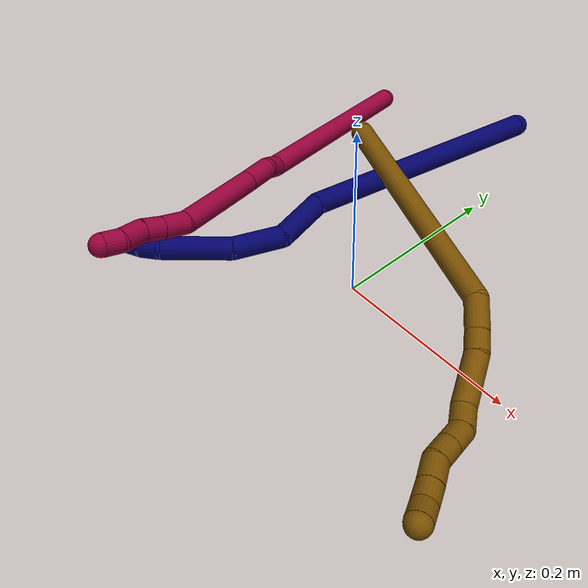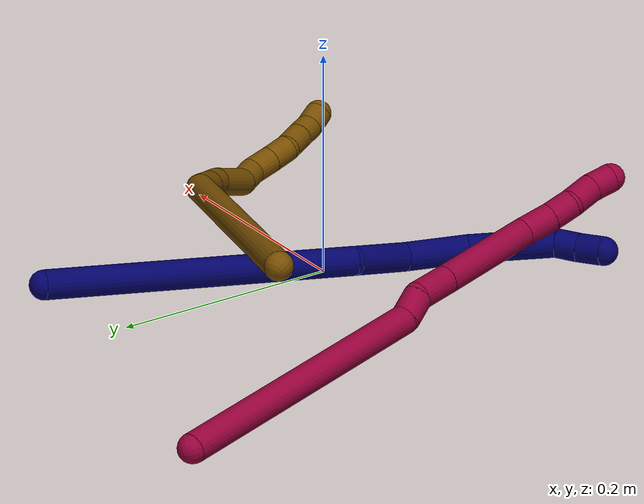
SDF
<sdf version="1.7">
 <world name="default">
  <model name="photoneo_s_sensor">
   <static>1</static>
   <pose>0 0 2 1.57079 1.57079 3.14159</pose>
   <link name="link">
    <inertial><mass>0.1</mass></inertial>
    <sensor name="sensor" type="depth">
     <update_rate>30</update_rate>
     <camera>
      <horizontal_fov>1.22</horizontal_fov>
      <image><width>1920</width><height>1200</height><format>B8G8R8</format></image>
      <clip><near>0.1</near><far>4</far></clip>
      <depth_camera><output>points</output></depth_camera>
     </camera>
     <plugin name="camera_plugin" filename="libgazebo_ros_depth_camera.so">
      <baseline>0.2</baseline>
      <alwaysOn>1</alwaysOn>
      <updateRate>0.0</updateRate>
      <cameraName>camera_ir</cameraName>
      <imageTopicName>/camera/color/image_raw</imageTopicName>
      <cameraInfoTopicName>/camera/color/camera_info</cameraInfoTopicName>
      <depthImageTopicName>/camera/depth/image_raw</depthImageTopicName>
      <depthImageCameraInfoTopicName>/camera/depth/camera_info</depthImageCameraInfoTopicName>
      <pointCloudTopicName>/camera/depth/points</pointCloudTopicName>
      <frameName>fr_optical</frameName>
      <pointCloudCutoff>0.1</pointCloudCutoff>
      <pointCloudCutoffMax>2.0</pointCloudCutoffMax>
      <distortionK1>0</distortionK1>
      <distortionK2>0</distortionK2>
      <distortionK3>0</distortionK3>
      <distortionT1>0</distortionT1>
      <distortionT2>0</distortionT2>
      <CxPrime>0</CxPrime>
      <Cx>0</Cx>
      <Cy>0</Cy>
      <focalLength>0</focalLength>
      <hackBaseline>0</hackBaseline>
     </plugin>
    </sensor>
   </link>
  </model>
  <model name="7">
   <static>0</static>
   <link name="7">
    <collision name="collision-cylinder-e_1_1_4">
     <pose>-0.027918 -0.087178 -0.098935 2.41928 -0.208638 -0.540796</pose>
     <geometry><cylinder><radius>0.0125</radius><length>0.269575</length></cylinder></geometry>
     <surface>
      <friction><ode><mu>1.16</mu><mu2>1.16</mu2><slip1>0</slip1><slip2>0</slip2></ode></friction>
      <contact><ode><kp>1e+06</kp><kd>1</kd><max_vel>0</max_vel><min_depth>0.001</min_depth></ode></contact>
     </surface>
    </collision>
    <visual name="visual-cylinder-e_1_1_4">
     <pose>-0.027918 -0.087178 -0.098935 2.41928 -0.208638 -0.540796</pose>
     <geometry><cylinder><radius>0.0125</radius><length>0.269575</length></cylinder></geometry>
     <material><ambient>0.003922 0 0.403922 1</ambient></material>
    </visual>
    <collision name="collision-cylinder-e_2_4_5">
     <pose>-0.054301 -0.197708 -0.213213 2.15207 0.054916 0.101723</pose>
     <geometry><cylinder><radius>0.0125</radius><length>0.055965</length></cylinder></geometry>
     <surface>
      <friction><ode><mu>1.16</mu><mu2>1.16</mu2><slip1>0</slip1><slip2>0</slip2></ode></friction>
      <contact><ode><kp>1e+06</kp><kd>1</kd><max_vel>0</max_vel><min_depth>0.001</min_depth></ode></contact>
     </surface>
    </collision>
    <visual name="visual-cylinder-e_2_4_5">
     <pose>-0.054301 -0.197708 -0.213213 2.15207 0.054916 0.101723</pose>
     <geometry><cylinder><radius>0.0125</radius><length>0.055965</length></cylinder></geometry>
     <material><ambient>0.003922 0 0.403922 1</ambient></material>
    </visual>
    <collision name="collision-cylinder-e_3_5_6">
     <pose>-0.061972 -0.237264 -0.249589 2.48516 -0.333772 -0.91876</pose>
     <geometry><cylinder><radius>0.0125</radius><length>0.056207</length></cylinder></geometry>
     <surface>
      <friction><ode><mu>1.16</mu><mu2>1.16</mu2><slip1>0</slip1><slip2>0</slip2></ode></friction>
      <contact><ode><kp>1e+06</kp><kd>1</kd><max_vel>0</max_vel><min_depth>0.001</min_depth></ode></contact>
     </surface>
    </collision>
    <visual name="visual-cylinder-e_3_5_6">
     <pose>-0.061972 -0.237264 -0.249589 2.48516 -0.333772 -0.91876</pose>
     <geometry><cylinder><radius>0.0125</radius><length>0.056207</length></cylinder></geometry>
     <material><ambient>0.003922 0 0.403922 1</ambient></material>
    </visual>
    <collision name="collision-cylinder-e_4_6_7">
     <pose>-0.088475 -0.265572 -0.301431 2.76728 -0.481534 -1.82762</pose>
     <geometry><cylinder><radius>0.0125</radius><length>0.074693</length></cylinder></geometry>
     <surface>
      <friction><ode><mu>1.16</mu><mu2>1.16</mu2><slip1>0</slip1><slip2>0</slip2></ode></friction>
      <contact><ode><kp>1e+06</kp><kd>1</kd><max_vel>0</max_vel><min_depth>0.001</min_depth></ode></contact>
     </surface>
    </collision>
    <visual name="visual-cylinder-e_4_6_7">
     <pose>-0.088475 -0.265572 -0.301431 2.76728 -0.481534 -1.82762</pose>
     <geometry><cylinder><radius>0.0125</radius><length>0.074693</length></cylinder></geometry>
     <material><ambient>0.003922 0 0.403922 1</ambient></material>
    </visual>
    <collision name="collision-cylinder-e_5_7_8">
     <pose>-0.109647 -0.277791 -0.342007 3.12967 -0.377615 -3.07922</pose>
     <geometry><cylinder><radius>0.0125</radius><length>0.021019</length></cylinder></geometry>
     <surface>
      <friction><ode><mu>1.16</mu><mu2>1.16</mu2><slip1>0</slip1><slip2>0</slip2></ode></friction>
      <contact><ode><kp>1e+06</kp><kd>1</kd><max_vel>0</max_vel><min_depth>0.001</min_depth></ode></contact>
     </surface>
    </collision>
    <visual name="visual-cylinder-e_5_7_8">
     <pose>-0.109647 -0.277791 -0.342007 3.12967 -0.377615 -3.07922</pose>
     <geometry><cylinder><radius>0.0125</radius><length>0.021019</length></cylinder></geometry>
     <material><ambient>0.003922 0 0.403922 1</ambient></material>
    </visual>
    <collision name="collision-cylinder-e_6_8_2">
     <pose>-0.119034 -0.276744 -0.361536 -3.02299 -0.511092 2.69467</pose>
     <geometry><cylinder><radius>0.0125</radius><length>0.022541</length></cylinder></geometry>
     <surface>
      <friction><ode><mu>1.16</mu><mu2>1.16</mu2><slip1>0</slip1><slip2>0</slip2></ode></friction>
      <contact><ode><kp>1e+06</kp><kd>1</kd><max_vel>0</max_vel><min_depth>0.001</min_depth></ode></contact>
     </surface>
    </collision>
    <visual name="visual-cylinder-e_6_8_2">
     <pose>-0.119034 -0.276744 -0.361536 -3.02299 -0.511092 2.69467</pose>
     <geometry><cylinder><radius>0.0125</radius><length>0.022541</length></cylinder></geometry>
     <material><ambient>0.003922 0 0.403922 1</ambient></material>
    </visual>
    <collision name="collision-sphere-2">
     <pose>-0.124547 -0.275581 -0.371297 0 -0 0</pose>
     <geometry><sphere><radius>0.0125</radius></sphere></geometry>
     <surface>
      <friction><ode><mu>1.16</mu><mu2>1.16</mu2><slip1>0</slip1><slip2>0</slip2></ode></friction>
      <contact><ode><kp>1e+06</kp><kd>1</kd><max_vel>0</max_vel><min_depth>0.001</min_depth></ode></contact>
     </surface>
    </collision>
    <visual name="visual-sphere-2">
     <pose>-0.124547 -0.275581 -0.371297 0 -0 0</pose>
     <geometry><sphere><radius>0.0125</radius></sphere></geometry>
     <material><ambient>0.003922 0 0.403922 1</ambient></material>
    </visual>
    <collision name="collision-sphere-4">
     <pose>-0.055837 -0.174356 -0.197871 0 -0 0</pose>
     <geometry><sphere><radius>0.0125</radius></sphere></geometry>
     <surface>
      <friction><ode><mu>1.16</mu><mu2>1.16</mu2><slip1>0</slip1><slip2>0</slip2></ode></friction>
      <contact><ode><kp>1e+06</kp><kd>1</kd><max_vel>0</max_vel><min_depth>0.001</min_depth></ode></contact>
     </surface>
    </collision>
    <visual name="visual-sphere-4">
     <pose>-0.055837 -0.174356 -0.197871 0 -0 0</pose>
     <geometry><sphere><radius>0.0125</radius></sphere></geometry>
     <material><ambient>0.003922 0 0.403922 1</ambient></material>
    </visual>
    <collision name="collision-sphere-1">
     <geometry><sphere><radius>0.0125</radius></sphere></geometry>
     <surface>
      <friction><ode><mu>1.16</mu><mu2>1.16</mu2><slip1>0</slip1><slip2>0</slip2></ode></friction>
      <contact><ode><kp>1e+06</kp><kd>1</kd><max_vel>0</max_vel><min_depth>0.001</min_depth></ode></contact>
     </surface>
    </collision>
    <visual name="visual-sphere-1">
     <geometry><sphere><radius>0.0125</radius></sphere></geometry>
     <material><ambient>0.003922 0 0.403922 1</ambient></material>
    </visual>
    <collision name="collision-sphere-8">
     <pose>-0.113522 -0.277907 -0.351775 0 -0 0</pose>
     <geometry><sphere><radius>0.0125</radius></sphere></geometry>
     <surface>
      <friction><ode><mu>1.16</mu><mu2>1.16</mu2><slip1>0</slip1><slip2>0</slip2></ode></friction>
      <contact><ode><kp>1e+06</kp><kd>1</kd><max_vel>0</max_vel><min_depth>0.001</min_depth></ode></contact>
     </surface>
    </collision>
    <visual name="visual-sphere-8">
     <pose>-0.113522 -0.277907 -0.351775 0 -0 0</pose>
     <geometry><sphere><radius>0.0125</radius></sphere></geometry>
     <material><ambient>0.003922 0 0.403922 1</ambient></material>
    </visual>
    <collision name="collision-sphere-5">
     <pose>-0.052765 -0.22106 -0.228554 0 -0 0</pose>
     <geometry><sphere><radius>0.0125</radius></sphere></geometry>
     <surface>
      <friction><ode><mu>1.16</mu><mu2>1.16</mu2><slip1>0</slip1><slip2>0</slip2></ode></friction>
      <contact><ode><kp>1e+06</kp><kd>1</kd><max_vel>0</max_vel><min_depth>0.001</min_depth></ode></contact>
     </surface>
    </collision>
    <visual name="visual-sphere-5">
     <pose>-0.052765 -0.22106 -0.228554 0 -0 0</pose>
     <geometry><sphere><radius>0.0125</radius></sphere></geometry>
     <material><ambient>0.003922 0 0.403922 1</ambient></material>
    </visual>
    <collision name="collision-sphere-6">
     <pose>-0.071179 -0.253469 -0.270623 0 -0 0</pose>
     <geometry><sphere><radius>0.0125</radius></sphere></geometry>
     <surface>
      <friction><ode><mu>1.16</mu><mu2>1.16</mu2><slip1>0</slip1><slip2>0</slip2></ode></friction>
      <contact><ode><kp>1e+06</kp><kd>1</kd><max_vel>0</max_vel><min_depth>0.001</min_depth></ode></contact>
     </surface>
    </collision>
    <visual name="visual-sphere-6">
     <pose>-0.071179 -0.253469 -0.270623 0 -0 0</pose>
     <geometry><sphere><radius>0.0125</radius></sphere></geometry>
     <material><ambient>0.003922 0 0.403922 1</ambient></material>
    </visual>
    <collision name="collision-sphere-7">
     <pose>-0.105772 -0.277674 -0.332239 0 -0 0</pose>
     <geometry><sphere><radius>0.0125</radius></sphere></geometry>
     <surface>
      <friction><ode><mu>1.16</mu><mu2>1.16</mu2><slip1>0</slip1><slip2>0</slip2></ode></friction>
      <contact><ode><kp>1e+06</kp><kd>1</kd><max_vel>0</max_vel><min_depth>0.001</min_depth></ode></contact>
     </surface>
    </collision>
    <visual name="visual-sphere-7">
     <pose>-0.105772 -0.277674 -0.332239 0 -0 0</pose>
     <geometry><sphere><radius>0.0125</radius></sphere></geometry>
     <material><ambient>0.003922 0 0.403922 1</ambient></material>
    </visual>
    <inertial>
     <pose>-0.051289 -0.15963 -0.180969 0 -0 0</pose>
     <mass>0.5</mass>
     <inertia>
      <ixx>0.000513</ixx>
      <ixy>0</ixy>
      <ixz>0</ixz>
      <iyy>-0.001829</iyy>
      <iyz>0</iyz>
      <izz>0.001433</izz>
     </inertia>
    </inertial>
   </link>
   <pose>-0.017419 0.286876 0.069507 -0.171117 1.13134 0.440628</pose>
  </model>
  <model name="8">
   <static>0</static>
   <link name="8">
    <collision name="collision-cylinder-e_1_1_4">
     <pose>0.038609 -0.062572 0.096483 0.575337 0.323913 0.096609</pose>
     <geometry><cylinder><radius>0.0125</radius><length>0.242609</length></cylinder></geometry>
     <surface>
      <friction><ode><mu>1.16</mu><mu2>1.16</mu2><slip1>0</slip1><slip2>0</slip2></ode></friction>
      <contact><ode><kp>1e+06</kp><kd>1</kd><max_vel>0</max_vel><min_depth>0.001</min_depth></ode></contact>
     </surface>
    </collision>
    <visual name="visual-cylinder-e_1_1_4">
     <pose>0.038609 -0.062572 0.096483 0.575337 0.323913 0.096609</pose>
     <geometry><cylinder><radius>0.0125</radius><length>0.242609</length></cylinder></geometry>
     <material><ambient>0.584314 0 0.227451 1</ambient></material>
    </visual>
    <collision name="collision-cylinder-e_2_4_5">
     <pose>0.085619 -0.128914 0.201008 0.438479 0.757621 0.176918</pose>
     <geometry><cylinder><radius>0.0125</radius><length>0.024452</length></cylinder></geometry>
     <surface>
      <friction><ode><mu>1.16</mu><mu2>1.16</mu2><slip1>0</slip1><slip2>0</slip2></ode></friction>
      <contact><ode><kp>1e+06</kp><kd>1</kd><max_vel>0</max_vel><min_depth>0.001</min_depth></ode></contact>
     </surface>
    </collision>
    <visual name="visual-cylinder-e_2_4_5">
     <pose>0.085619 -0.128914 0.201008 0.438479 0.757621 0.176918</pose>
     <geometry><cylinder><radius>0.0125</radius><length>0.024452</length></cylinder></geometry>
     <material><ambient>0.584314 0 0.227451 1</ambient></material>
    </visual>
    <collision name="collision-cylinder-e_3_5_6">
     <pose>0.099395 -0.142218 0.222407 0.619861 0.316465 0.102114</pose>
     <geometry><cylinder><radius>0.0125</radius><length>0.034535</length></cylinder></geometry>
     <surface>
      <friction><ode><mu>1.16</mu><mu2>1.16</mu2><slip1>0</slip1><slip2>0</slip2></ode></friction>
      <contact><ode><kp>1e+06</kp><kd>1</kd><max_vel>0</max_vel><min_depth>0.001</min_depth></ode></contact>
     </surface>
    </collision>
    <visual name="visual-cylinder-e_3_5_6">
     <pose>0.099395 -0.142218 0.222407 0.619861 0.316465 0.102114</pose>
     <geometry><cylinder><radius>0.0125</radius><length>0.034535</length></cylinder></geometry>
     <material><ambient>0.584314 0 0.227451 1</ambient></material>
    </visual>
    <collision name="collision-cylinder-e_4_6_7">
     <pose>0.120906 -0.178643 0.274769 0.603613 0.3283 0.103042</pose>
     <geometry><cylinder><radius>0.0125</radius><length>0.1001</length></cylinder></geometry>
     <surface>
      <friction><ode><mu>1.16</mu><mu2>1.16</mu2><slip1>0</slip1><slip2>0</slip2></ode></friction>
      <contact><ode><kp>1e+06</kp><kd>1</kd><max_vel>0</max_vel><min_depth>0.001</min_depth></ode></contact>
     </surface>
    </collision>
    <visual name="visual-cylinder-e_4_6_7">
     <pose>0.120906 -0.178643 0.274769 0.603613 0.3283 0.103042</pose>
     <geometry><cylinder><radius>0.0125</radius><length>0.1001</length></cylinder></geometry>
     <material><ambient>0.584314 0 0.227451 1</ambient></material>
    </visual>
    <collision name="collision-cylinder-e_5_7_8">
     <pose>0.140942 -0.209235 0.327207 0.268723 0.272781 0.0371</pose>
     <geometry><cylinder><radius>0.0125</radius><length>0.028936</length></cylinder></geometry>
     <surface>
      <friction><ode><mu>1.16</mu><mu2>1.16</mu2><slip1>0</slip1><slip2>0</slip2></ode></friction>
      <contact><ode><kp>1e+06</kp><kd>1</kd><max_vel>0</max_vel><min_depth>0.001</min_depth></ode></contact>
     </surface>
    </collision>
    <visual name="visual-cylinder-e_5_7_8">
     <pose>0.140942 -0.209235 0.327207 0.268723 0.272781 0.0371</pose>
     <geometry><cylinder><radius>0.0125</radius><length>0.028936</length></cylinder></geometry>
     <material><ambient>0.584314 0 0.227451 1</ambient></material>
    </visual>
    <collision name="collision-cylinder-e_6_8_9">
     <pose>0.148527 -0.215036 0.351117 0.198014 0.332287 0.033311</pose>
     <geometry><cylinder><radius>0.0125</radius><length>0.022608</length></cylinder></geometry>
     <surface>
      <friction><ode><mu>1.16</mu><mu2>1.16</mu2><slip1>0</slip1><slip2>0</slip2></ode></friction>
      <contact><ode><kp>1e+06</kp><kd>1</kd><max_vel>0</max_vel><min_depth>0.001</min_depth></ode></contact>
     </surface>
    </collision>
    <visual name="visual-cylinder-e_6_8_9">
     <pose>0.148527 -0.215036 0.351117 0.198014 0.332287 0.033311</pose>
     <geometry><cylinder><radius>0.0125</radius><length>0.022608</length></cylinder></geometry>
     <material><ambient>0.584314 0 0.227451 1</ambient></material>
    </visual>
    <collision name="collision-cylinder-e_7_9_10">
     <pose>0.157519 -0.222889 0.37194 0.50731 0.421314 0.110752</pose>
     <geometry><cylinder><radius>0.0125</radius><length>0.025942</length></cylinder></geometry>
     <surface>
      <friction><ode><mu>1.16</mu><mu2>1.16</mu2><slip1>0</slip1><slip2>0</slip2></ode></friction>
      <contact><ode><kp>1e+06</kp><kd>1</kd><max_vel>0</max_vel><min_depth>0.001</min_depth></ode></contact>
     </surface>
    </collision>
    <visual name="visual-cylinder-e_7_9_10">
     <pose>0.157519 -0.222889 0.37194 0.50731 0.421314 0.110752</pose>
     <geometry><cylinder><radius>0.0125</radius><length>0.025942</length></cylinder></geometry>
     <material><ambient>0.584314 0 0.227451 1</ambient></material>
    </visual>
    <collision name="collision-cylinder-e_8_10_2">
     <pose>0.165287 -0.23121 0.392066 0.257033 0.23888 0.031015</pose>
     <geometry><cylinder><radius>0.0125</radius><length>0.020817</length></cylinder></geometry>
     <surface>
      <friction><ode><mu>1.16</mu><mu2>1.16</mu2><slip1>0</slip1><slip2>0</slip2></ode></friction>
      <contact><ode><kp>1e+06</kp><kd>1</kd><max_vel>0</max_vel><min_depth>0.001</min_depth></ode></contact>
     </surface>
    </collision>
    <visual name="visual-cylinder-e_8_10_2">
     <pose>0.165287 -0.23121 0.392066 0.257033 0.23888 0.031015</pose>
     <geometry><cylinder><radius>0.0125</radius><length>0.020817</length></cylinder></geometry>
     <material><ambient>0.584314 0 0.227451 1</ambient></material>
    </visual>
    <collision name="collision-sphere-2">
     <pose>0.16775 -0.233781 0.401847 0 -0 0</pose>
     <geometry><sphere><radius>0.0125</radius></sphere></geometry>
     <surface>
      <friction><ode><mu>1.16</mu><mu2>1.16</mu2><slip1>0</slip1><slip2>0</slip2></ode></friction>
      <contact><ode><kp>1e+06</kp><kd>1</kd><max_vel>0</max_vel><min_depth>0.001</min_depth></ode></contact>
     </surface>
    </collision>
    <visual name="visual-sphere-2">
     <pose>0.16775 -0.233781 0.401847 0 -0 0</pose>
     <geometry><sphere><radius>0.0125</radius></sphere></geometry>
     <material><ambient>0.584314 0 0.227451 1</ambient></material>
    </visual>
    <collision name="collision-sphere-10">
     <pose>0.162824 -0.228639 0.382286 0 -0 0</pose>
     <geometry><sphere><radius>0.0125</radius></sphere></geometry>
     <surface>
      <friction><ode><mu>1.16</mu><mu2>1.16</mu2><slip1>0</slip1><slip2>0</slip2></ode></friction>
      <contact><ode><kp>1e+06</kp><kd>1</kd><max_vel>0</max_vel><min_depth>0.001</min_depth></ode></contact>
     </surface>
    </collision>
    <visual name="visual-sphere-10">
     <pose>0.162824 -0.228639 0.382286 0 -0 0</pose>
     <geometry><sphere><radius>0.0125</radius></sphere></geometry>
     <material><ambient>0.584314 0 0.227451 1</ambient></material>
    </visual>
    <collision name="collision-sphere-9">
     <pose>0.152215 -0.217138 0.361594 0 -0 0</pose>
     <geometry><sphere><radius>0.0125</radius></sphere></geometry>
     <surface>
      <friction><ode><mu>1.16</mu><mu2>1.16</mu2><slip1>0</slip1><slip2>0</slip2></ode></friction>
      <contact><ode><kp>1e+06</kp><kd>1</kd><max_vel>0</max_vel><min_depth>0.001</min_depth></ode></contact>
     </surface>
    </collision>
    <visual name="visual-sphere-9">
     <pose>0.152215 -0.217138 0.361594 0 -0 0</pose>
     <geometry><sphere><radius>0.0125</radius></sphere></geometry>
     <material><ambient>0.584314 0 0.227451 1</ambient></material>
    </visual>
    <collision name="collision-sphere-4">
     <pose>0.077217 -0.125143 0.192966 0 -0 0</pose>
     <geometry><sphere><radius>0.0125</radius></sphere></geometry>
     <surface>
      <friction><ode><mu>1.16</mu><mu2>1.16</mu2><slip1>0</slip1><slip2>0</slip2></ode></friction>
      <contact><ode><kp>1e+06</kp><kd>1</kd><max_vel>0</max_vel><min_depth>0.001</min_depth></ode></contact>
     </surface>
    </collision>
    <visual name="visual-sphere-4">
     <pose>0.077217 -0.125143 0.192966 0 -0 0</pose>
     <geometry><sphere><radius>0.0125</radius></sphere></geometry>
     <material><ambient>0.584314 0 0.227451 1</ambient></material>
    </visual>
    <collision name="collision-sphere-1">
     <geometry><sphere><radius>0.0125</radius></sphere></geometry>
     <surface>
      <friction><ode><mu>1.16</mu><mu2>1.16</mu2><slip1>0</slip1><slip2>0</slip2></ode></friction>
      <contact><ode><kp>1e+06</kp><kd>1</kd><max_vel>0</max_vel><min_depth>0.001</min_depth></ode></contact>
     </surface>
    </collision>
    <visual name="visual-sphere-1">
     <geometry><sphere><radius>0.0125</radius></sphere></geometry>
     <material><ambient>0.584314 0 0.227451 1</ambient></material>
    </visual>
    <collision name="collision-sphere-8">
     <pose>0.14484 -0.212934 0.34064 0 -0 0</pose>
     <geometry><sphere><radius>0.0125</radius></sphere></geometry>
     <surface>
      <friction><ode><mu>1.16</mu><mu2>1.16</mu2><slip1>0</slip1><slip2>0</slip2></ode></friction>
      <contact><ode><kp>1e+06</kp><kd>1</kd><max_vel>0</max_vel><min_depth>0.001</min_depth></ode></contact>
     </surface>
    </collision>
    <visual name="visual-sphere-8">
     <pose>0.14484 -0.212934 0.34064 0 -0 0</pose>
     <geometry><sphere><radius>0.0125</radius></sphere></geometry>
     <material><ambient>0.584314 0 0.227451 1</ambient></material>
    </visual>
    <collision name="collision-sphere-5">
     <pose>0.094021 -0.132685 0.20905 0 -0 0</pose>
     <geometry><sphere><radius>0.0125</radius></sphere></geometry>
     <surface>
      <friction><ode><mu>1.16</mu><mu2>1.16</mu2><slip1>0</slip1><slip2>0</slip2></ode></friction>
      <contact><ode><kp>1e+06</kp><kd>1</kd><max_vel>0</max_vel><min_depth>0.001</min_depth></ode></contact>
     </surface>
    </collision>
    <visual name="visual-sphere-5">
     <pose>0.094021 -0.132685 0.20905 0 -0 0</pose>
     <geometry><sphere><radius>0.0125</radius></sphere></geometry>
     <material><ambient>0.584314 0 0.227451 1</ambient></material>
    </visual>
    <collision name="collision-sphere-6">
     <pose>0.104769 -0.151751 0.235764 0 -0 0</pose>
     <geometry><sphere><radius>0.0125</radius></sphere></geometry>
     <surface>
      <friction><ode><mu>1.16</mu><mu2>1.16</mu2><slip1>0</slip1><slip2>0</slip2></ode></friction>
      <contact><ode><kp>1e+06</kp><kd>1</kd><max_vel>0</max_vel><min_depth>0.001</min_depth></ode></contact>
     </surface>
    </collision>
    <visual name="visual-sphere-6">
     <pose>0.104769 -0.151751 0.235764 0 -0 0</pose>
     <geometry><sphere><radius>0.0125</radius></sphere></geometry>
     <material><ambient>0.584314 0 0.227451 1</ambient></material>
    </visual>
    <collision name="collision-sphere-7">
     <pose>0.137044 -0.205535 0.313774 0 -0 0</pose>
     <geometry><sphere><radius>0.0125</radius></sphere></geometry>
     <surface>
      <friction><ode><mu>1.16</mu><mu2>1.16</mu2><slip1>0</slip1><slip2>0</slip2></ode></friction>
      <contact><ode><kp>1e+06</kp><kd>1</kd><max_vel>0</max_vel><min_depth>0.001</min_depth></ode></contact>
     </surface>
    </collision>
    <visual name="visual-sphere-7">
     <pose>0.137044 -0.205535 0.313774 0 -0 0</pose>
     <geometry><sphere><radius>0.0125</radius></sphere></geometry>
     <material><ambient>0.584314 0 0.227451 1</ambient></material>
    </visual>
    <inertial>
     <pose>0.083918 -0.125275 0.197449 0 -0 0</pose>
     <mass>0.5</mass>
     <inertia>
      <ixx>0.001361</ixx>
      <ixy>0</ixy>
      <ixz>0</ixz>
      <iyy>0.001211</iyy>
      <iyz>0</iyz>
      <izz>0.000287</izz>
     </inertia>
    </inertial>
   </link>
   <pose>-0.231297 0.280352 0.010611 1.19679 -0.853329 -0.160577</pose>
  </model>
  <model name="12">
   <static>0</static>
   <link name="12">
    <collision name="collision-cylinder-e_1_1_4">
     <pose>-0.036507 -0.101644 -0.067157 2.15466 -0.291148 -0.532242</pose>
     <geometry><cylinder><radius>0.0125</radius><length>0.254357</length></cylinder></geometry>
     <surface>
      <friction><ode><mu>1.16</mu><mu2>1.16</mu2><slip1>0</slip1><slip2>0</slip2></ode></friction>
      <contact><ode><kp>1e+06</kp><kd>1</kd><max_vel>0</max_vel><min_depth>0.001</min_depth></ode></contact>
     </surface>
    </collision>
    <visual name="visual-cylinder-e_1_1_4">
     <pose>-0.036507 -0.101644 -0.067157 2.15466 -0.291148 -0.532242</pose>
     <geometry><cylinder><radius>0.0125</radius><length>0.254357</length></cylinder></geometry>
     <material><ambient>0.466667 0.301961 0 1</ambient></material>
    </visual>
    <collision name="collision-cylinder-e_2_4_5">
     <pose>-0.069578 -0.215951 -0.1462 2.32463 0.195269 0.445093</pose>
     <geometry><cylinder><radius>0.0125</radius><length>0.035408</length></cylinder></geometry>
     <surface>
      <friction><ode><mu>1.16</mu><mu2>1.16</mu2><slip1>0</slip1><slip2>0</slip2></ode></friction>
      <contact><ode><kp>1e+06</kp><kd>1</kd><max_vel>0</max_vel><min_depth>0.001</min_depth></ode></contact>
     </surface>
    </collision>
    <visual name="visual-cylinder-e_2_4_5">
     <pose>-0.069578 -0.215951 -0.1462 2.32463 0.195269 0.445093</pose>
     <geometry><cylinder><radius>0.0125</radius><length>0.035408</length></cylinder></geometry>
     <material><ambient>0.466667 0.301961 0 1</ambient></material>
    </visual>
    <collision name="collision-cylinder-e_3_5_6">
     <pose>-0.063777 -0.235927 -0.165967 2.39341 0.21667 0.540532</pose>
     <geometry><cylinder><radius>0.0125</radius><length>0.022017</length></cylinder></geometry>
     <surface>
      <friction><ode><mu>1.16</mu><mu2>1.16</mu2><slip1>0</slip1><slip2>0</slip2></ode></friction>
      <contact><ode><kp>1e+06</kp><kd>1</kd><max_vel>0</max_vel><min_depth>0.001</min_depth></ode></contact>
     </surface>
    </collision>
    <visual name="visual-cylinder-e_3_5_6">
     <pose>-0.063777 -0.235927 -0.165967 2.39341 0.21667 0.540532</pose>
     <geometry><cylinder><radius>0.0125</radius><length>0.022017</length></cylinder></geometry>
     <material><ambient>0.466667 0.301961 0 1</ambient></material>
    </visual>
    <collision name="collision-cylinder-e_4_6_7">
     <pose>-0.050379 -0.258867 -0.191966 2.42997 0.431997 1.06671</pose>
     <geometry><cylinder><radius>0.0125</radius><length>0.052694</length></cylinder></geometry>
     <surface>
      <friction><ode><mu>1.16</mu><mu2>1.16</mu2><slip1>0</slip1><slip2>0</slip2></ode></friction>
      <contact><ode><kp>1e+06</kp><kd>1</kd><max_vel>0</max_vel><min_depth>0.001</min_depth></ode></contact>
     </surface>
    </collision>
    <visual name="visual-cylinder-e_4_6_7">
     <pose>-0.050379 -0.258867 -0.191966 2.42997 0.431997 1.06671</pose>
     <geometry><cylinder><radius>0.0125</radius><length>0.052694</length></cylinder></geometry>
     <material><ambient>0.466667 0.301961 0 1</ambient></material>
    </visual>
    <collision name="collision-cylinder-e_5_7_8">
     <pose>-0.038138 -0.279876 -0.220995 2.68319 0.099173 0.419188</pose>
     <geometry><cylinder><radius>0.0125</radius><length>0.024451</length></cylinder></geometry>
     <surface>
      <friction><ode><mu>1.16</mu><mu2>1.16</mu2><slip1>0</slip1><slip2>0</slip2></ode></friction>
      <contact><ode><kp>1e+06</kp><kd>1</kd><max_vel>0</max_vel><min_depth>0.001</min_depth></ode></contact>
     </surface>
    </collision>
    <visual name="visual-cylinder-e_5_7_8">
     <pose>-0.038138 -0.279876 -0.220995 2.68319 0.099173 0.419188</pose>
     <geometry><cylinder><radius>0.0125</radius><length>0.024451</length></cylinder></geometry>
     <material><ambient>0.466667 0.301961 0 1</ambient></material>
    </visual>
    <collision name="collision-cylinder-e_6_8_9">
     <pose>-0.033226 -0.285362 -0.243183 3.13245 0.317067 3.0844</pose>
     <geometry><cylinder><radius>0.0125</radius><length>0.023741</length></cylinder></geometry>
     <surface>
      <friction><ode><mu>1.16</mu><mu2>1.16</mu2><slip1>0</slip1><slip2>0</slip2></ode></friction>
      <contact><ode><kp>1e+06</kp><kd>1</kd><max_vel>0</max_vel><min_depth>0.001</min_depth></ode></contact>
     </surface>
    </collision>
    <visual name="visual-cylinder-e_6_8_9">
     <pose>-0.033226 -0.285362 -0.243183 3.13245 0.317067 3.0844</pose>
     <geometry><cylinder><radius>0.0125</radius><length>0.023741</length></cylinder></geometry>
     <material><ambient>0.466667 0.301961 0 1</ambient></material>
    </visual>
    <collision name="collision-cylinder-e_7_9_10">
     <pose>-0.026269 -0.28548 -0.265265 3.14018 0.292716 3.13201</pose>
     <geometry><cylinder><radius>0.0125</radius><length>0.022568</length></cylinder></geometry>
     <surface>
      <friction><ode><mu>1.16</mu><mu2>1.16</mu2><slip1>0</slip1><slip2>0</slip2></ode></friction>
      <contact><ode><kp>1e+06</kp><kd>1</kd><max_vel>0</max_vel><min_depth>0.001</min_depth></ode></contact>
     </surface>
    </collision>
    <visual name="visual-cylinder-e_7_9_10">
     <pose>-0.026269 -0.28548 -0.265265 3.14018 0.292716 3.13201</pose>
     <geometry><cylinder><radius>0.0125</radius><length>0.022568</length></cylinder></geometry>
     <material><ambient>0.466667 0.301961 0 1</ambient></material>
    </visual>
    <collision name="collision-cylinder-e_8_10_11">
     <pose>-0.021496 -0.289577 -0.287654 2.80287 0.122914 0.690845</pose>
     <geometry><cylinder><radius>0.0125</radius><length>0.024753</length></cylinder></geometry>
     <surface>
      <friction><ode><mu>1.16</mu><mu2>1.16</mu2><slip1>0</slip1><slip2>0</slip2></ode></friction>
      <contact><ode><kp>1e+06</kp><kd>1</kd><max_vel>0</max_vel><min_depth>0.001</min_depth></ode></contact>
     </surface>
    </collision>
    <visual name="visual-cylinder-e_8_10_11">
     <pose>-0.021496 -0.289577 -0.287654 2.80287 0.122914 0.690845</pose>
     <geometry><cylinder><radius>0.0125</radius><length>0.024753</length></cylinder></geometry>
     <material><ambient>0.466667 0.301961 0 1</ambient></material>
    </visual>
    <collision name="collision-cylinder-e_9_11_12">
     <pose>-0.018364 -0.296655 -0.308645 2.83323 0.162073 0.963073</pose>
     <geometry><cylinder><radius>0.0125</radius><length>0.020005</length></cylinder></geometry>
     <surface>
      <friction><ode><mu>1.16</mu><mu2>1.16</mu2><slip1>0</slip1><slip2>0</slip2></ode></friction>
      <contact><ode><kp>1e+06</kp><kd>1</kd><max_vel>0</max_vel><min_depth>0.001</min_depth></ode></contact>
     </surface>
    </collision>
    <visual name="visual-cylinder-e_9_11_12">
     <pose>-0.018364 -0.296655 -0.308645 2.83323 0.162073 0.963073</pose>
     <geometry><cylinder><radius>0.0125</radius><length>0.020005</length></cylinder></geometry>
     <material><ambient>0.466667 0.301961 0 1</ambient></material>
    </visual>
    <collision name="collision-cylinder-e_10_12_2">
     <pose>-0.01671 -0.300839 -0.327983 3.02247 0.003992 0.066922</pose>
     <geometry><cylinder><radius>0.0125</radius><length>0.020008</length></cylinder></geometry>
     <surface>
      <friction><ode><mu>1.16</mu><mu2>1.16</mu2><slip1>0</slip1><slip2>0</slip2></ode></friction>
      <contact><ode><kp>1e+06</kp><kd>1</kd><max_vel>0</max_vel><min_depth>0.001</min_depth></ode></contact>
     </surface>
    </collision>
    <visual name="visual-cylinder-e_10_12_2">
     <pose>-0.01671 -0.300839 -0.327983 3.02247 0.003992 0.066922</pose>
     <geometry><cylinder><radius>0.0125</radius><length>0.020008</length></cylinder></geometry>
     <material><ambient>0.466667 0.301961 0 1</ambient></material>
    </visual>
    <collision name="collision-sphere-2">
     <pose>-0.01667 -0.302028 -0.337916 0 -0 0</pose>
     <geometry><sphere><radius>0.0125</radius></sphere></geometry>
     <surface>
      <friction><ode><mu>1.16</mu><mu2>1.16</mu2><slip1>0</slip1><slip2>0</slip2></ode></friction>
      <contact><ode><kp>1e+06</kp><kd>1</kd><max_vel>0</max_vel><min_depth>0.001</min_depth></ode></contact>
     </surface>
    </collision>
    <visual name="visual-sphere-2">
     <pose>-0.01667 -0.302028 -0.337916 0 -0 0</pose>
     <geometry><sphere><radius>0.0125</radius></sphere></geometry>
     <material><ambient>0.466667 0.301961 0 1</ambient></material>
    </visual>
    <collision name="collision-sphere-12">
     <pose>-0.01675 -0.299651 -0.31805 0 -0 0</pose>
     <geometry><sphere><radius>0.0125</radius></sphere></geometry>
     <surface>
      <friction><ode><mu>1.16</mu><mu2>1.16</mu2><slip1>0</slip1><slip2>0</slip2></ode></friction>
      <contact><ode><kp>1e+06</kp><kd>1</kd><max_vel>0</max_vel><min_depth>0.001</min_depth></ode></contact>
     </surface>
    </collision>
    <visual name="visual-sphere-12">
     <pose>-0.01675 -0.299651 -0.31805 0 -0 0</pose>
     <geometry><sphere><radius>0.0125</radius></sphere></geometry>
     <material><ambient>0.466667 0.301961 0 1</ambient></material>
    </visual>
    <collision name="collision-sphere-11">
     <pose>-0.019978 -0.293659 -0.299239 0 -0 0</pose>
     <geometry><sphere><radius>0.0125</radius></sphere></geometry>
     <surface>
      <friction><ode><mu>1.16</mu><mu2>1.16</mu2><slip1>0</slip1><slip2>0</slip2></ode></friction>
      <contact><ode><kp>1e+06</kp><kd>1</kd><max_vel>0</max_vel><min_depth>0.001</min_depth></ode></contact>
     </surface>
    </collision>
    <visual name="visual-sphere-11">
     <pose>-0.019978 -0.293659 -0.299239 0 -0 0</pose>
     <geometry><sphere><radius>0.0125</radius></sphere></geometry>
     <material><ambient>0.466667 0.301961 0 1</ambient></material>
    </visual>
    <collision name="collision-sphere-10">
     <pose>-0.023013 -0.285496 -0.276069 0 -0 0</pose>
     <geometry><sphere><radius>0.0125</radius></sphere></geometry>
     <surface>
      <friction><ode><mu>1.16</mu><mu2>1.16</mu2><slip1>0</slip1><slip2>0</slip2></ode></friction>
      <contact><ode><kp>1e+06</kp><kd>1</kd><max_vel>0</max_vel><min_depth>0.001</min_depth></ode></contact>
     </surface>
    </collision>
    <visual name="visual-sphere-10">
     <pose>-0.023013 -0.285496 -0.276069 0 -0 0</pose>
     <geometry><sphere><radius>0.0125</radius></sphere></geometry>
     <material><ambient>0.466667 0.301961 0 1</ambient></material>
    </visual>
    <collision name="collision-sphere-9">
     <pose>-0.029525 -0.285465 -0.254461 0 -0 0</pose>
     <geometry><sphere><radius>0.0125</radius></sphere></geometry>
     <surface>
      <friction><ode><mu>1.16</mu><mu2>1.16</mu2><slip1>0</slip1><slip2>0</slip2></ode></friction>
      <contact><ode><kp>1e+06</kp><kd>1</kd><max_vel>0</max_vel><min_depth>0.001</min_depth></ode></contact>
     </surface>
    </collision>
    <visual name="visual-sphere-9">
     <pose>-0.029525 -0.285465 -0.254461 0 -0 0</pose>
     <geometry><sphere><radius>0.0125</radius></sphere></geometry>
     <material><ambient>0.466667 0.301961 0 1</ambient></material>
    </visual>
    <collision name="collision-sphere-4">
     <pose>-0.073014 -0.203289 -0.134313 0 -0 0</pose>
     <geometry><sphere><radius>0.0125</radius></sphere></geometry>
     <surface>
      <friction><ode><mu>1.16</mu><mu2>1.16</mu2><slip1>0</slip1><slip2>0</slip2></ode></friction>
      <contact><ode><kp>1e+06</kp><kd>1</kd><max_vel>0</max_vel><min_depth>0.001</min_depth></ode></contact>
     </surface>
    </collision>
    <visual name="visual-sphere-4">
     <pose>-0.073014 -0.203289 -0.134313 0 -0 0</pose>
     <geometry><sphere><radius>0.0125</radius></sphere></geometry>
     <material><ambient>0.466667 0.301961 0 1</ambient></material>
    </visual>
    <collision name="collision-sphere-1">
     <geometry><sphere><radius>0.0125</radius></sphere></geometry>
     <surface>
      <friction><ode><mu>1.16</mu><mu2>1.16</mu2><slip1>0</slip1><slip2>0</slip2></ode></friction>
      <contact><ode><kp>1e+06</kp><kd>1</kd><max_vel>0</max_vel><min_depth>0.001</min_depth></ode></contact>
     </surface>
    </collision>
    <visual name="visual-sphere-1">
     <geometry><sphere><radius>0.0125</radius></sphere></geometry>
     <material><ambient>0.466667 0.301961 0 1</ambient></material>
    </visual>
    <collision name="collision-sphere-8">
     <pose>-0.036927 -0.285259 -0.231905 0 -0 0</pose>
     <geometry><sphere><radius>0.0125</radius></sphere></geometry>
     <surface>
      <friction><ode><mu>1.16</mu><mu2>1.16</mu2><slip1>0</slip1><slip2>0</slip2></ode></friction>
      <contact><ode><kp>1e+06</kp><kd>1</kd><max_vel>0</max_vel><min_depth>0.001</min_depth></ode></contact>
     </surface>
    </collision>
    <visual name="visual-sphere-8">
     <pose>-0.036927 -0.285259 -0.231905 0 -0 0</pose>
     <geometry><sphere><radius>0.0125</radius></sphere></geometry>
     <material><ambient>0.466667 0.301961 0 1</ambient></material>
    </visual>
    <collision name="collision-sphere-5">
     <pose>-0.066143 -0.228613 -0.158087 0 -0 0</pose>
     <geometry><sphere><radius>0.0125</radius></sphere></geometry>
     <surface>
      <friction><ode><mu>1.16</mu><mu2>1.16</mu2><slip1>0</slip1><slip2>0</slip2></ode></friction>
      <contact><ode><kp>1e+06</kp><kd>1</kd><max_vel>0</max_vel><min_depth>0.001</min_depth></ode></contact>
     </surface>
    </collision>
    <visual name="visual-sphere-5">
     <pose>-0.066143 -0.228613 -0.158087 0 -0 0</pose>
     <geometry><sphere><radius>0.0125</radius></sphere></geometry>
     <material><ambient>0.466667 0.301961 0 1</ambient></material>
    </visual>
    <collision name="collision-sphere-6">
     <pose>-0.06141 -0.243241 -0.173847 0 -0 0</pose>
     <geometry><sphere><radius>0.0125</radius></sphere></geometry>
     <surface>
      <friction><ode><mu>1.16</mu><mu2>1.16</mu2><slip1>0</slip1><slip2>0</slip2></ode></friction>
      <contact><ode><kp>1e+06</kp><kd>1</kd><max_vel>0</max_vel><min_depth>0.001</min_depth></ode></contact>
     </surface>
    </collision>
    <visual name="visual-sphere-6">
     <pose>-0.06141 -0.243241 -0.173847 0 -0 0</pose>
     <geometry><sphere><radius>0.0125</radius></sphere></geometry>
     <material><ambient>0.466667 0.301961 0 1</ambient></material>
    </visual>
    <collision name="collision-sphere-7">
     <pose>-0.039348 -0.274492 -0.210086 0 -0 0</pose>
     <geometry><sphere><radius>0.0125</radius></sphere></geometry>
     <surface>
      <friction><ode><mu>1.16</mu><mu2>1.16</mu2><slip1>0</slip1><slip2>0</slip2></ode></friction>
      <contact><ode><kp>1e+06</kp><kd>1</kd><max_vel>0</max_vel><min_depth>0.001</min_depth></ode></contact>
     </surface>
    </collision>
    <visual name="visual-sphere-7">
     <pose>-0.039348 -0.274492 -0.210086 0 -0 0</pose>
     <geometry><sphere><radius>0.0125</radius></sphere></geometry>
     <material><ambient>0.466667 0.301961 0 1</ambient></material>
    </visual>
    <inertial>
     <pose>-0.038712 -0.183035 -0.146096 0 -0 0</pose>
     <mass>0.5</mass>
     <inertia><ixx>0.0005</ixx><ixy>0</ixy><ixz>0</ixz><iyy>-0.001172</iyy><iyz>0</iyz><izz>0.00148</izz></inertia>
    </inertial>
   </link>
   <pose>-0.11843 0.124902 0.082745 2.13191 0.653399 -2.37105</pose>
  </model>
 </world>
</sdf>
